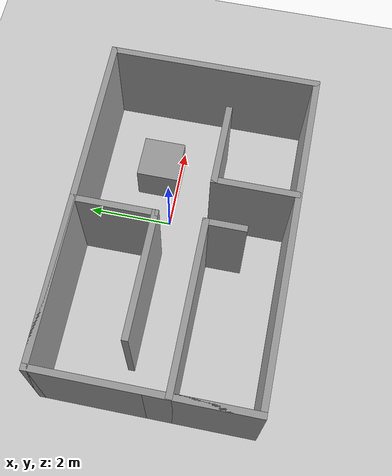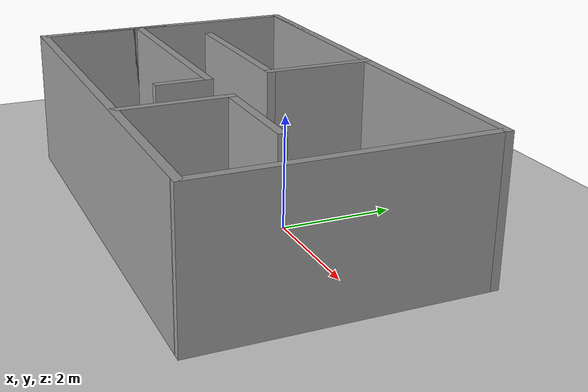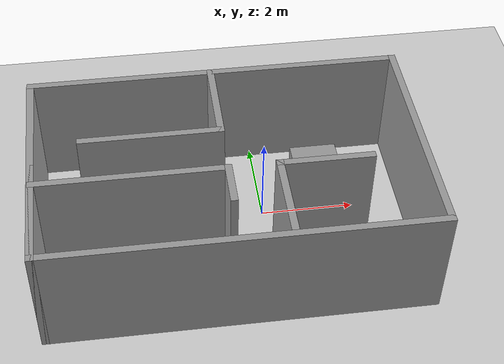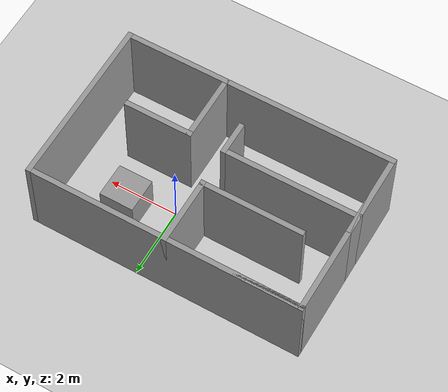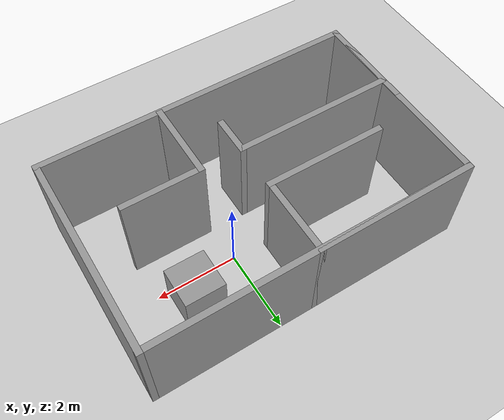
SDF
<sdf version="1.7">
 <world name="default">
  <light name="sun" type="directional">
   <pose>0 0 10 0 -0 0</pose>
   <diffuse>0.8 0.8 0.8 1</diffuse>
   <specular>0.2 0.2 0.2 1</specular>
   <attenuation>
    <range>1000</range>
    <constant>0.9</constant>
    <linear>0.01</linear>
    <quadratic>0.001</quadratic>
   </attenuation>
   <direction>-0.5 0.1 -0.9</direction>
   <spot><inner_angle>0</inner_angle><outer_angle>0</outer_angle><falloff>0</falloff></spot>
  </light>
  <model name="ground_plane">
   <static>1</static>
   <link name="link">
    <collision name="collision">
     <geometry><plane><normal>0 0 1</normal><size>100 100</size></plane></geometry>
     <surface><friction><ode><mu>100</mu><mu2>50</mu2></ode></friction></surface>
    </collision>
    <visual name="visual">
     <cast_shadows>0</cast_shadows>
     <geometry><plane><normal>0 0 1</normal><size>100 100</size></plane></geometry>
     <material>
      <script><uri>file://media/materials/scripts/gazebo.material</uri><name>Gazebo/Grey</name></script>
     </material>
    </visual>
   </link>
  </model>
  <gravity>0 0 -9.8</gravity>
  <magnetic_field>6e-06 2.3e-05 -4.2e-05</magnetic_field>
  <atmosphere type="adiabatic"/>
  <physics type="ode">
   <max_step_size>0.001</max_step_size>
   <real_time_factor>1</real_time_factor>
   <real_time_update_rate>1000</real_time_update_rate>
  </physics>
  <scene><ambient>0.4 0.4 0.4 1</ambient><background>0.7 0.7 0.7 1</background><shadows>1</shadows></scene>
  <audio><device>default</device></audio>
  <spherical_coordinates>
   <surface_model>EARTH_WGS84</surface_model>
   <latitude_deg>0</latitude_deg>
   <longitude_deg>0</longitude_deg>
   <elevation>0</elevation>
   <heading_deg>0</heading_deg>
  </spherical_coordinates>
  <model name="Room">
   <pose>-0.813523 -0.467852 0 0 -0 0</pose>
   <link name="Wall_0">
    <collision name="Wall_0_Collision">
     <geometry><box><size>8 0.15 2.5</size></box></geometry>
     <pose>0 0 1.25 0 -0 0</pose>
    </collision>
    <visual name="Wall_0_Visual">
     <pose>0 0 1.25 0 -0 0</pose>
     <geometry><box><size>8 0.15 2.5</size></box></geometry>
     <material>
      <script><uri>file://media/materials/scripts/gazebo.material</uri><name>Gazebo/Grey</name></script>
      <ambient>1 1 1 1</ambient>
     </material>
     <meta><layer>0</layer></meta>
    </visual>
    <pose>0 -2.425 0 0 -0 0</pose>
   </link>
   <link name="Wall_1">
    <collision name="Wall_1_Collision">
     <geometry><box><size>5 0.15 2.5</size></box></geometry>
     <pose>0 0 1.25 0 -0 0</pose>
    </collision>
    <visual name="Wall_1_Visual">
     <pose>0 0 1.25 0 -0 0</pose>
     <geometry><box><size>5 0.15 2.5</size></box></geometry>
     <material>
      <script><uri>file://media/materials/scripts/gazebo.material</uri><name>Gazebo/Grey</name></script>
      <ambient>1 1 1 1</ambient>
     </material>
     <meta><layer>0</layer></meta>
    </visual>
    <pose>3.925 0 0 0 -0 1.5708</pose>
   </link>
   <link name="Wall_11">
    <collision name="Wall_11_Collision">
     <geometry><box><size>3 0.15 2.5</size></box></geometry>
     <pose>0 0 1.25 0 -0 0</pose>
    </collision>
    <visual name="Wall_11_Visual">
     <pose>0 0 1.25 0 -0 0</pose>
     <geometry><box><size>3 0.15 2.5</size></box></geometry>
     <material>
      <script><uri>file://media/materials/scripts/gazebo.material</uri><name>Gazebo/Grey</name></script>
      <ambient>1 1 1 1</ambient>
     </material>
     <meta><layer>0</layer></meta>
    </visual>
    <pose>-1.5 0.575 0 0 -0 3.14159</pose>
   </link>
   <link name="Wall_16">
    <collision name="Wall_16_Collision">
     <geometry><box><size>2 0.15 2.5</size></box></geometry>
     <pose>0 0 1.25 0 -0 0</pose>
    </collision>
    <visual name="Wall_16_Visual">
     <pose>0 0 1.25 0 -0 0</pose>
     <geometry><box><size>2 0.15 2.5</size></box></geometry>
     <material>
      <script><uri>file://media/materials/scripts/gazebo.material</uri><name>Gazebo/Grey</name></script>
      <ambient>1 1 1 1</ambient>
     </material>
     <meta><layer>0</layer></meta>
    </visual>
    <pose>0.968005 -1.46357 0 0 -0 1.5708</pose>
   </link>
   <link name="Wall_17">
    <collision name="Wall_17_Collision">
     <geometry><box><size>2 0.15 2.5</size></box></geometry>
     <pose>0 0 1.25 0 -0 0</pose>
    </collision>
    <visual name="Wall_17_Visual">
     <pose>0 0 1.25 0 -0 0</pose>
     <geometry><box><size>2 0.15 2.5</size></box></geometry>
     <material>
      <script><uri>file://media/materials/scripts/gazebo.material</uri><name>Gazebo/Grey</name></script>
      <ambient>1 1 1 1</ambient>
     </material>
     <meta><layer>0</layer></meta>
    </visual>
    <pose>1.89301 -0.538568 0 0 -0 0</pose>
   </link>
   <link name="Wall_2">
    <collision name="Wall_2_Collision">
     <geometry><box><size>8 0.15 2.5</size></box></geometry>
     <pose>0 0 1.25 0 -0 0</pose>
    </collision>
    <visual name="Wall_2_Visual">
     <pose>0 0 1.25 0 -0 0</pose>
     <geometry><box><size>8 0.15 2.5</size></box></geometry>
     <material>
      <script><uri>file://media/materials/scripts/gazebo.material</uri><name>Gazebo/Grey</name></script>
      <ambient>1 1 1 1</ambient>
     </material>
     <meta><layer>0</layer></meta>
    </visual>
    <pose>0 2.425 0 0 -0 3.14159</pose>
   </link>
   <link name="Wall_25">
    <collision name="Wall_25_Collision">
     <geometry><box><size>1 0.15 2.5</size></box></geometry>
     <pose>0 0 1.25 0 -0 0</pose>
    </collision>
    <visual name="Wall_25_Visual">
     <pose>0 0 1.25 0 -0 0</pose>
     <geometry><box><size>1 0.15 2.5</size></box></geometry>
     <material>
      <script><uri>file://media/materials/scripts/gazebo.material</uri><name>Gazebo/Grey</name></script>
      <ambient>1 1 1 1</ambient>
     </material>
     <meta><layer>0</layer></meta>
    </visual>
    <pose>-0.058606 -0.965322 0 0 -0 1.5708</pose>
   </link>
   <link name="Wall_26">
    <collision name="Wall_26_Collision">
     <geometry><box><size>4 0.15 2.5</size></box></geometry>
     <pose>0 0 1.25 0 -0 0</pose>
    </collision>
    <visual name="Wall_26_Visual">
     <pose>0 0 1.25 0 -0 0</pose>
     <geometry><box><size>4 0.15 2.5</size></box></geometry>
     <material>
      <script><uri>file://media/materials/scripts/gazebo.material</uri><name>Gazebo/Grey</name></script>
      <ambient>1 1 1 1</ambient>
     </material>
     <meta><layer>0</layer></meta>
    </visual>
    <pose>-1.98361 -0.540321 0 0 -0 3.14159</pose>
   </link>
   <link name="Wall_3">
    <collision name="Wall_3_Collision">
     <geometry><box><size>5 0.15 2.5</size></box></geometry>
     <pose>0 0 1.25 0 -0 0</pose>
    </collision>
    <visual name="Wall_3_Visual">
     <pose>0 0 1.25 0 -0 0</pose>
     <geometry><box><size>5 0.15 2.5</size></box></geometry>
     <material>
      <script><uri>file://media/materials/scripts/gazebo.material</uri><name>Gazebo/Grey</name></script>
      <ambient>1 1 1 1</ambient>
     </material>
     <meta><layer>0</layer></meta>
    </visual>
    <pose>-3.925 0 0 0 -0 -1.5708</pose>
   </link>
   <link name="Wall_5">
    <collision name="Wall_5_Collision">
     <geometry><box><size>4 0.15 2.5</size></box></geometry>
     <pose>0 0 1.25 0 -0 0</pose>
    </collision>
    <visual name="Wall_5_Visual">
     <pose>0 0 1.25 0 -0 0</pose>
     <geometry><box><size>4 0.15 2.5</size></box></geometry>
     <material>
      <script><uri>file://media/materials/scripts/gazebo.material</uri><name>Gazebo/Grey</name></script>
      <ambient>1 1 1 1</ambient>
     </material>
     <meta><layer>0</layer></meta>
    </visual>
    <pose>-2 2.425 0 0 -0 0</pose>
   </link>
   <link name="Wall_6">
    <collision name="Wall_6_Collision">
     <geometry><box><size>2 0.15 2.5</size></box></geometry>
     <pose>0 0 1.25 0 -0 0</pose>
    </collision>
    <visual name="Wall_6_Visual">
     <pose>0 0 1.25 0 -0 0</pose>
     <geometry><box><size>2 0.15 2.5</size></box></geometry>
     <material>
      <script><uri>file://media/materials/scripts/gazebo.material</uri><name>Gazebo/Grey</name></script>
      <ambient>1 1 1 1</ambient>
     </material>
     <meta><layer>0</layer></meta>
    </visual>
    <pose>-0.075 1.5 0 0 -0 -1.5708</pose>
   </link>
   <link name="Wall_9">
    <collision name="Wall_9_Collision">
     <geometry><box><size>2.5 0.15 2.5</size></box></geometry>
     <pose>0 0 1.25 0 -0 0</pose>
    </collision>
    <visual name="Wall_9_Visual">
     <pose>0 0 1.25 0 -0 0</pose>
     <geometry><box><size>2.5 0.15 2.5</size></box></geometry>
     <material>
      <script><uri>file://media/materials/scripts/gazebo.material</uri><name>Gazebo/Grey</name></script>
      <ambient>1 1 1 1</ambient>
     </material>
     <meta><layer>0</layer></meta>
    </visual>
    <pose>-3.925 -1.25 0 0 -0 1.5708</pose>
   </link>
   <static>1</static>
  </model>
  <model name="unit_box">
   <pose>1.23563 0.454429 0.499995 1e-05 -0 0</pose>
   <link name="link">
    <inertial>
     <mass>1</mass>
     <inertia>
      <ixx>0.166667</ixx>
      <ixy>0</ixy>
      <ixz>0</ixz>
      <iyy>0.166667</iyy>
      <iyz>0</iyz>
      <izz>0.166667</izz>
     </inertia>
    </inertial>
    <collision name="collision"><geometry><box><size>1 1 1</size></box></geometry></collision>
    <visual name="visual">
     <geometry><box><size>1 1 1</size></box></geometry>
     <material>
      <script><name>Gazebo/Grey</name><uri>file://media/materials/scripts/gazebo.material</uri></script>
     </material>
    </visual>
   </link>
  </model>
 </world>
</sdf>
